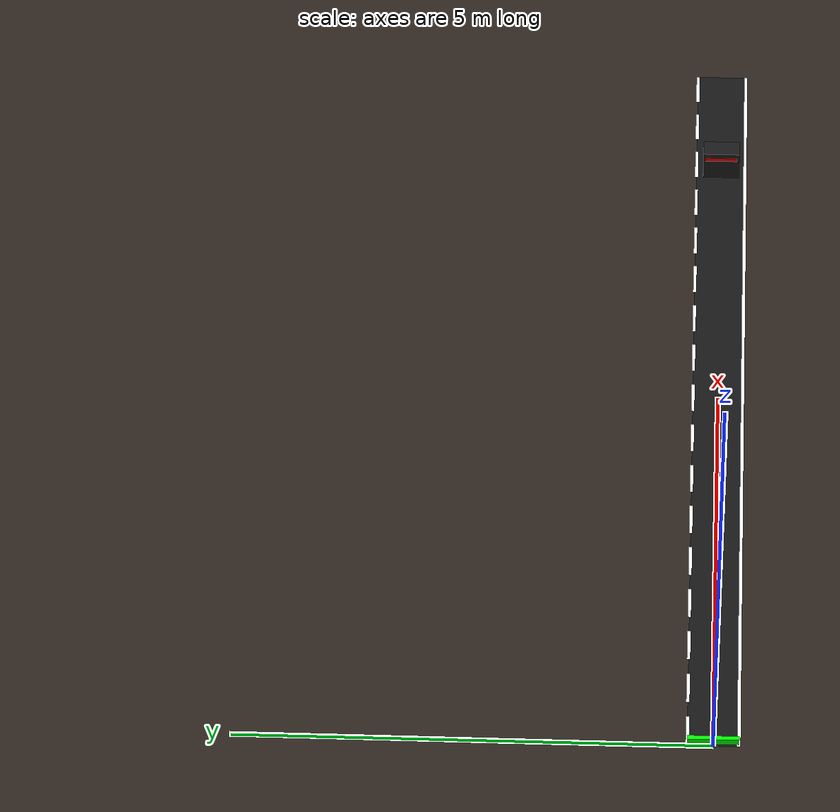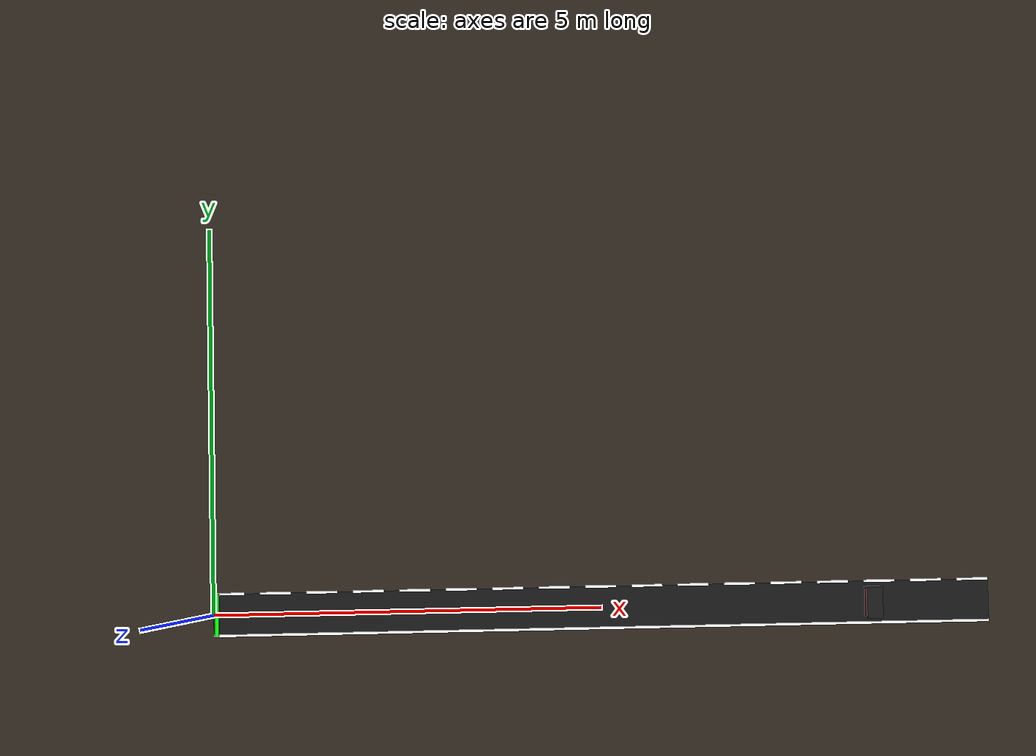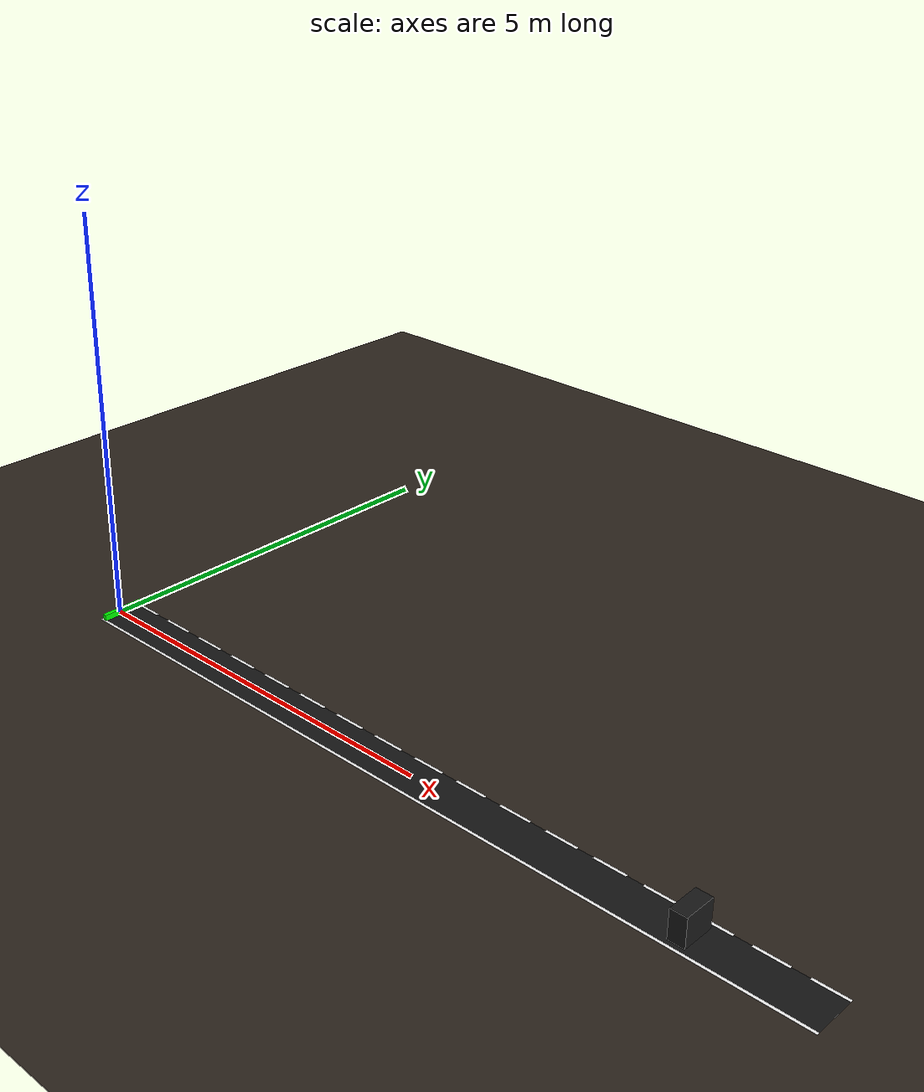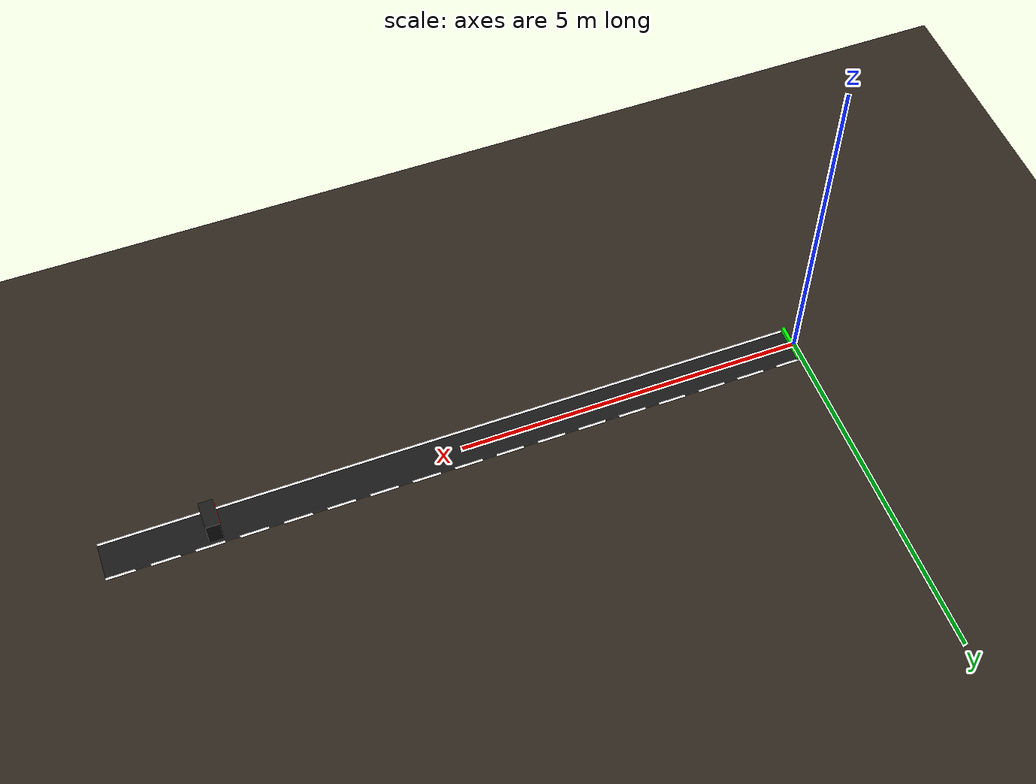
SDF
<?xml version="1.0" ?>
<sdf version="1.9">
  <world name="aeb_world">

    <!-- ═══ PLUGINS ═══ -->
    <plugin filename="gz-sim-physics-system"          name="gz::sim::systems::Physics"/>
    <plugin filename="gz-sim-user-commands-system"    name="gz::sim::systems::UserCommands"/>
    <plugin filename="gz-sim-scene-broadcaster-system" name="gz::sim::systems::SceneBroadcaster"/>
    <plugin filename="gz-sim-sensors-system"          name="gz::sim::systems::Sensors">
      <render_engine>ogre2</render_engine>
    </plugin>
    <plugin filename="gz-sim-contact-system"          name="gz::sim::systems::Contact"/>

    <!-- ═══ PHYSICS ═══ -->
    <physics name="default_physics" type="ode">
      <max_step_size>0.001</max_step_size>
      <real_time_factor>1.0</real_time_factor>
    </physics>

    <!-- ═══ SCENE ═══ -->
    <scene>
      <ambient>0.4 0.4 0.4 1</ambient>
      <background>0.08 0.08 0.12 1</background>
      <shadows>true</shadows>
    </scene>

    <!-- ═══ SUN ═══ -->
    <light name="sun" type="directional">
      <cast_shadows>true</cast_shadows>
      <pose>0 0 10 0 0 0</pose>
      <diffuse>0.9 0.9 0.9 1</diffuse>
      <specular>0.3 0.3 0.3 1</specular>
      <attenuation><range>1000</range><constant>0.9</constant><linear>0.01</linear><quadratic>0.001</quadratic></attenuation>
      <direction>-0.5 0.1 -0.9</direction>
    </light>

    <!-- ═══ GROUND PLANE — dark asphalt ═══ -->
    <model name="ground_plane">
      <static>true</static>
      <link name="link">
        <collision name="collision">
          <geometry><box><size>100 100 0.01</size></box></geometry>
          <pose>0 0 -0.005 0 0 0</pose>
        </collision>
        <visual name="visual">
          <geometry><box><size>100 100 0.01</size></box></geometry>
          <pose>0 0 -0.005 0 0 0</pose>
          <material>
            <ambient>0.12 0.10 0.08 1</ambient>
            <diffuse>0.18 0.15 0.12 1</diffuse>
            <specular>0.02 0.02 0.02 1</specular>
          </material>
        </visual>
      </link>
    </model>

    <!-- ═══ AEB ROAD SURFACE — 10m × 0.54m ═══ -->
    <model name="aeb_road">
      <static>true</static>
      <pose>5 0 0.001 0 0 0</pose>
      <link name="link">
        <collision name="col"><geometry><box><size>10 0.54 0.002</size></box></geometry></collision>
        <visual name="vis">
          <geometry><box><size>10 0.54 0.002</size></box></geometry>
          <material><ambient>0.06 0.06 0.06 1</ambient><diffuse>0.09 0.09 0.09 1</diffuse></material>
        </visual>
      </link>
    </model>

    <!-- ═══ RIGHT LANE EDGE — solid white ═══ -->
    <model name="lane_right_solid">
      <static>true</static>
      <pose>5 -0.2679 0.002 0 0 0</pose>
      <link name="link">
        <collision name="col"><geometry><box><size>10 0.035 0.002</size></box></geometry></collision>
        <visual name="vis">
          <geometry><box><size>10 0.035 0.002</size></box></geometry>
          <material><ambient>1 1 1 1</ambient><diffuse>1 1 1 1</diffuse></material>
        </visual>
      </link>
    </model>

    <!-- ═══ LEFT LANE EDGE — 17 dashes, 0.6m pitch ═══ -->
    <model name="lane_dash_0">  <static>true</static> <pose>0.20 0.2679 0.002 0 0 0</pose> <link name="l"> <collision name="c"><geometry><box><size>0.4 0.035 0.002</size></box></geometry></collision> <visual name="v"><geometry><box><size>0.4 0.035 0.002</size></box></geometry><material><ambient>1 1 1 1</ambient><diffuse>1 1 1 1</diffuse></material></visual> </link> </model>
    <model name="lane_dash_1">  <static>true</static> <pose>0.80 0.2679 0.002 0 0 0</pose> <link name="l"> <collision name="c"><geometry><box><size>0.4 0.035 0.002</size></box></geometry></collision> <visual name="v"><geometry><box><size>0.4 0.035 0.002</size></box></geometry><material><ambient>1 1 1 1</ambient><diffuse>1 1 1 1</diffuse></material></visual> </link> </model>
    <model name="lane_dash_2">  <static>true</static> <pose>1.40 0.2679 0.002 0 0 0</pose> <link name="l"> <collision name="c"><geometry><box><size>0.4 0.035 0.002</size></box></geometry></collision> <visual name="v"><geometry><box><size>0.4 0.035 0.002</size></box></geometry><material><ambient>1 1 1 1</ambient><diffuse>1 1 1 1</diffuse></material></visual> </link> </model>
    <model name="lane_dash_3">  <static>true</static> <pose>2.00 0.2679 0.002 0 0 0</pose> <link name="l"> <collision name="c"><geometry><box><size>0.4 0.035 0.002</size></box></geometry></collision> <visual name="v"><geometry><box><size>0.4 0.035 0.002</size></box></geometry><material><ambient>1 1 1 1</ambient><diffuse>1 1 1 1</diffuse></material></visual> </link> </model>
    <model name="lane_dash_4">  <static>true</static> <pose>2.60 0.2679 0.002 0 0 0</pose> <link name="l"> <collision name="c"><geometry><box><size>0.4 0.035 0.002</size></box></geometry></collision> <visual name="v"><geometry><box><size>0.4 0.035 0.002</size></box></geometry><material><ambient>1 1 1 1</ambient><diffuse>1 1 1 1</diffuse></material></visual> </link> </model>
    <model name="lane_dash_5">  <static>true</static> <pose>3.20 0.2679 0.002 0 0 0</pose> <link name="l"> <collision name="c"><geometry><box><size>0.4 0.035 0.002</size></box></geometry></collision> <visual name="v"><geometry><box><size>0.4 0.035 0.002</size></box></geometry><material><ambient>1 1 1 1</ambient><diffuse>1 1 1 1</diffuse></material></visual> </link> </model>
    <model name="lane_dash_6">  <static>true</static> <pose>3.80 0.2679 0.002 0 0 0</pose> <link name="l"> <collision name="c"><geometry><box><size>0.4 0.035 0.002</size></box></geometry></collision> <visual name="v"><geometry><box><size>0.4 0.035 0.002</size></box></geometry><material><ambient>1 1 1 1</ambient><diffuse>1 1 1 1</diffuse></material></visual> </link> </model>
    <model name="lane_dash_7">  <static>true</static> <pose>4.40 0.2679 0.002 0 0 0</pose> <link name="l"> <collision name="c"><geometry><box><size>0.4 0.035 0.002</size></box></geometry></collision> <visual name="v"><geometry><box><size>0.4 0.035 0.002</size></box></geometry><material><ambient>1 1 1 1</ambient><diffuse>1 1 1 1</diffuse></material></visual> </link> </model>
    <model name="lane_dash_8">  <static>true</static> <pose>5.00 0.2679 0.002 0 0 0</pose> <link name="l"> <collision name="c"><geometry><box><size>0.4 0.035 0.002</size></box></geometry></collision> <visual name="v"><geometry><box><size>0.4 0.035 0.002</size></box></geometry><material><ambient>1 1 1 1</ambient><diffuse>1 1 1 1</diffuse></material></visual> </link> </model>
    <model name="lane_dash_9">  <static>true</static> <pose>5.60 0.2679 0.002 0 0 0</pose> <link name="l"> <collision name="c"><geometry><box><size>0.4 0.035 0.002</size></box></geometry></collision> <visual name="v"><geometry><box><size>0.4 0.035 0.002</size></box></geometry><material><ambient>1 1 1 1</ambient><diffuse>1 1 1 1</diffuse></material></visual> </link> </model>
    <model name="lane_dash_10"> <static>true</static> <pose>6.20 0.2679 0.002 0 0 0</pose> <link name="l"> <collision name="c"><geometry><box><size>0.4 0.035 0.002</size></box></geometry></collision> <visual name="v"><geometry><box><size>0.4 0.035 0.002</size></box></geometry><material><ambient>1 1 1 1</ambient><diffuse>1 1 1 1</diffuse></material></visual> </link> </model>
    <model name="lane_dash_11"> <static>true</static> <pose>6.80 0.2679 0.002 0 0 0</pose> <link name="l"> <collision name="c"><geometry><box><size>0.4 0.035 0.002</size></box></geometry></collision> <visual name="v"><geometry><box><size>0.4 0.035 0.002</size></box></geometry><material><ambient>1 1 1 1</ambient><diffuse>1 1 1 1</diffuse></material></visual> </link> </model>
    <model name="lane_dash_12"> <static>true</static> <pose>7.40 0.2679 0.002 0 0 0</pose> <link name="l"> <collision name="c"><geometry><box><size>0.4 0.035 0.002</size></box></geometry></collision> <visual name="v"><geometry><box><size>0.4 0.035 0.002</size></box></geometry><material><ambient>1 1 1 1</ambient><diffuse>1 1 1 1</diffuse></material></visual> </link> </model>
    <model name="lane_dash_13"> <static>true</static> <pose>8.00 0.2679 0.002 0 0 0</pose> <link name="l"> <collision name="c"><geometry><box><size>0.4 0.035 0.002</size></box></geometry></collision> <visual name="v"><geometry><box><size>0.4 0.035 0.002</size></box></geometry><material><ambient>1 1 1 1</ambient><diffuse>1 1 1 1</diffuse></material></visual> </link> </model>
    <model name="lane_dash_14"> <static>true</static> <pose>8.60 0.2679 0.002 0 0 0</pose> <link name="l"> <collision name="c"><geometry><box><size>0.4 0.035 0.002</size></box></geometry></collision> <visual name="v"><geometry><box><size>0.4 0.035 0.002</size></box></geometry><material><ambient>1 1 1 1</ambient><diffuse>1 1 1 1</diffuse></material></visual> </link> </model>
    <model name="lane_dash_15"> <static>true</static> <pose>9.20 0.2679 0.002 0 0 0</pose> <link name="l"> <collision name="c"><geometry><box><size>0.4 0.035 0.002</size></box></geometry></collision> <visual name="v"><geometry><box><size>0.4 0.035 0.002</size></box></geometry><material><ambient>1 1 1 1</ambient><diffuse>1 1 1 1</diffuse></material></visual> </link> </model>
    <model name="lane_dash_16"> <static>true</static> <pose>9.80 0.2679 0.002 0 0 0</pose> <link name="l"> <collision name="c"><geometry><box><size>0.4 0.035 0.002</size></box></geometry></collision> <visual name="v"><geometry><box><size>0.4 0.035 0.002</size></box></geometry><material><ambient>1 1 1 1</ambient><diffuse>1 1 1 1</diffuse></material></visual> </link> </model>

    <!-- ═══ START MARKER — green ═══ -->
    <model name="start_marker">
      <static>true</static>
      <pose>0.05 0 0.04 0 0 0</pose>
      <link name="link">
        <collision name="col"><geometry><box><size>0.05 0.54 0.08</size></box></geometry></collision>
        <visual name="vis">
          <geometry><box><size>0.05 0.54 0.08</size></box></geometry>
          <material><ambient>0 0.8 0 1</ambient><diffuse>0 1 0 1</diffuse></material>
        </visual>
      </link>
    </model>

    <!-- ═══ CAR OBSTACLE — rear of stopped car ═══
         Rear of stopped car. YOLO11n COCO car(id=2). Hard stop x=6.65m.
         Dark body + red emissive tail lights → triggers YOLO11n car class. -->
    <model name="car_obstacle">
      <static>true</static>
      <pose>8.5 0 0.18 0 0 0</pose>
      <link name="body">
        <collision name="body_col">
          <geometry><box><size>0.20 0.40 0.36</size></box></geometry>
        </collision>
        <visual name="body_vis">
          <geometry><box><size>0.20 0.40 0.36</size></box></geometry>
          <material>
            <ambient>0.06 0.06 0.06 1</ambient>
            <diffuse>0.10 0.10 0.10 1</diffuse>
            <specular>0.05 0.05 0.05 1</specular>
          </material>
        </visual>
      </link>
      <link name="tail_lights">
        <pose>-0.105 0 0.10 0 0 0</pose>
        <collision name="tl_col">
          <geometry><box><size>0.005 0.35 0.04</size></box></geometry>
        </collision>
        <visual name="tl_vis">
          <geometry><box><size>0.005 0.35 0.04</size></box></geometry>
          <material>
            <ambient>0.9 0 0 1</ambient>
            <diffuse>1 0 0 1</diffuse>
            <specular>0.1 0 0 1</specular>
            <emissive>0.6 0 0 1</emissive>
          </material>
        </visual>
      </link>
      <joint name="tl_joint" type="fixed">
        <parent>body</parent>
        <child>tail_lights</child>
      </joint>
    </model>

  </world>
</sdf>
